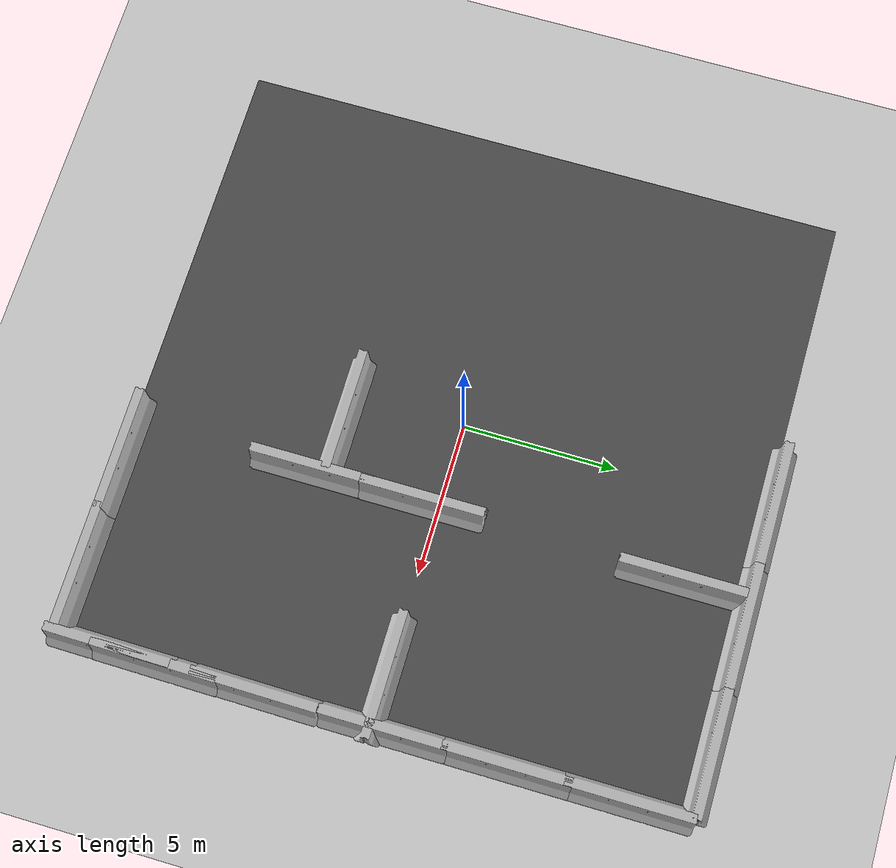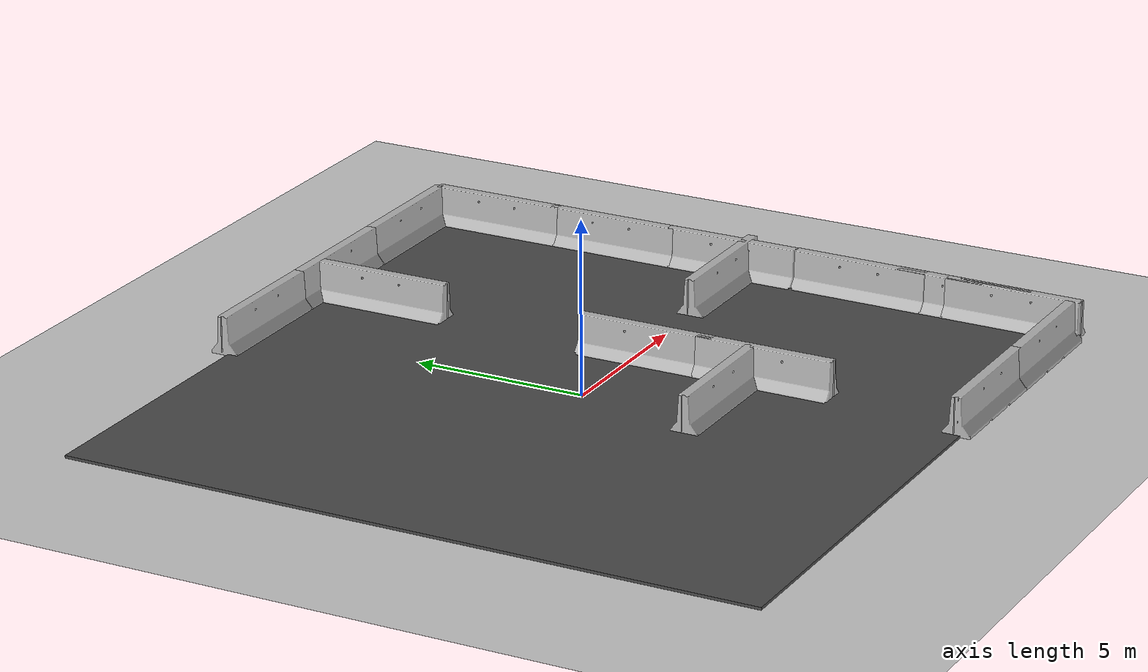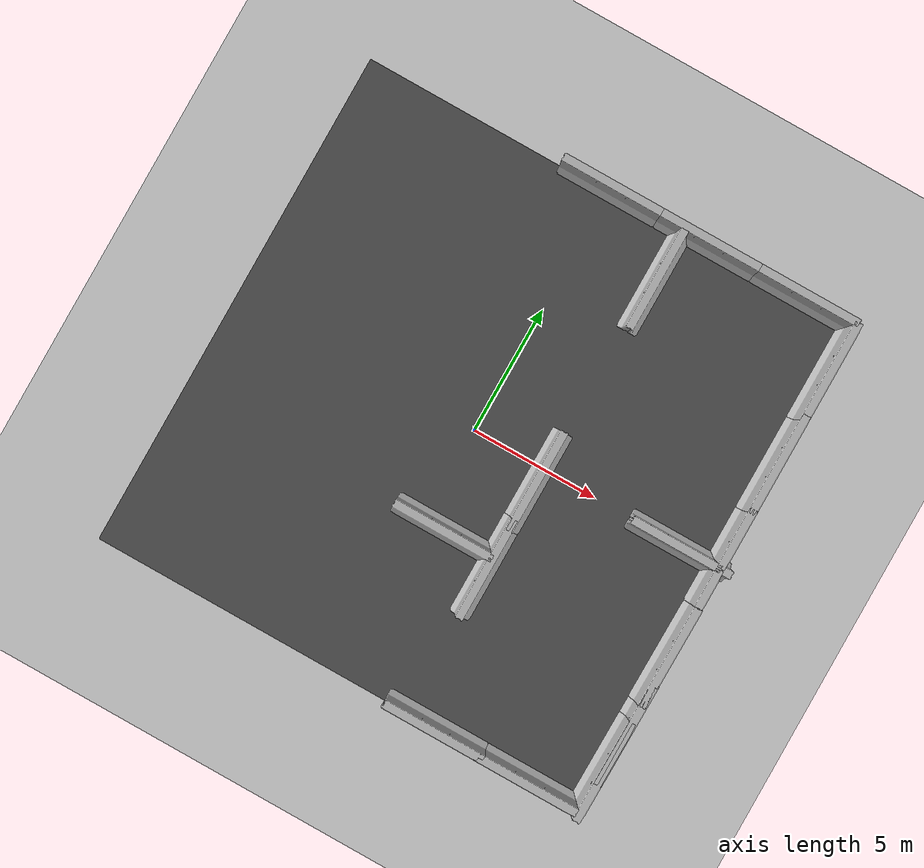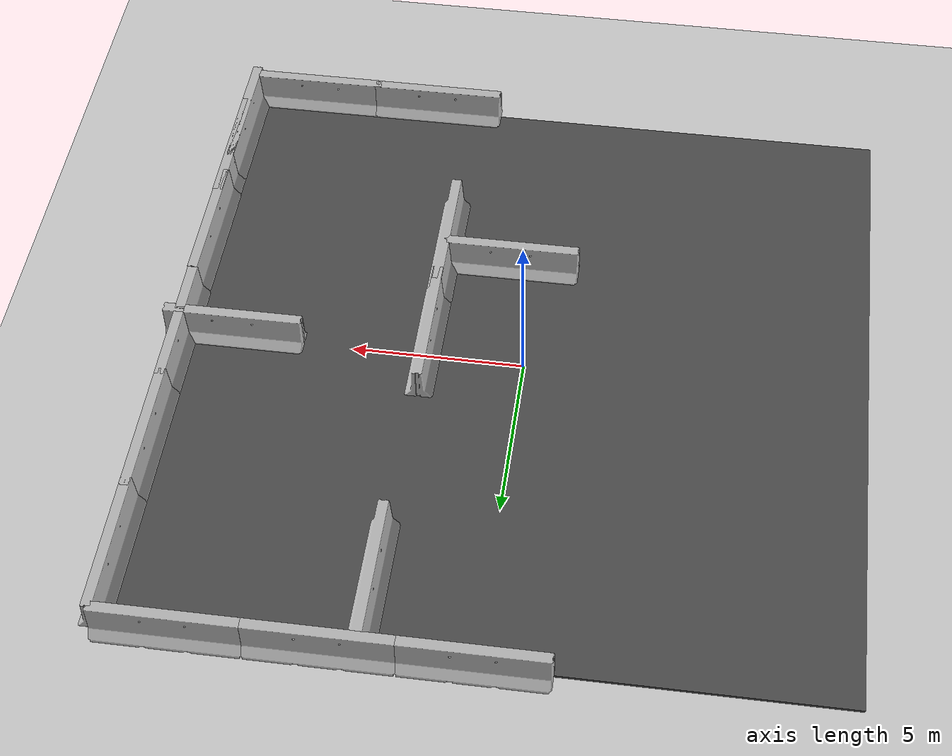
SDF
<sdf version="1.6">
 <world name="default">
  <model name="ground_plane">
   <static>1</static>
   <link name="link">
    <collision name="collision">
     <geometry><plane><normal>0 0 1</normal><size>100 100</size></plane></geometry>
     <surface><friction><ode><mu>100</mu><mu2>50</mu2></ode></friction></surface>
    </collision>
    <visual name="visual">
     <cast_shadows>0</cast_shadows>
     <geometry><plane><normal>0 0 1</normal><size>100 100</size></plane></geometry>
     <material>
      <script><uri>file://media/materials/scripts/gazebo.material</uri><name>Gazebo/Grey</name></script>
     </material>
    </visual>
    <velocity_decay><linear>0</linear><angular>0</angular></velocity_decay>
   </link>
  </model>
  <model name="jersey_barrier_2">
   <static>1</static>
   <link name="link">
    <visual name="visual">
     <geometry>
      <mesh><uri>model://jersey_barrier/meshes/jersey_barrier.dae</uri><scale>1 1 1</scale></mesh>
     </geometry>
    </visual>
    <collision name="upright">
     <pose>0 0 0.5715 0 -0 0</pose>
     <geometry><box><size>4.06542 0.3063 1.143</size></box></geometry>
    </collision>
    <collision name="base">
     <pose>0 0 0.032258 0 -0 0</pose>
     <geometry><box><size>4.06542 0.8107 0.064516</size></box></geometry>
    </collision>
    <collision name="base2">
     <pose>0 0 0.1 0 -0 0</pose>
     <geometry><box><size>4.06542 0.65 0.1</size></box></geometry>
    </collision>
    <collision name="base3">
     <pose>0 0 0.2 0 -0 0</pose>
     <geometry><box><size>4.06542 0.5 0.1</size></box></geometry>
    </collision>
    <collision name="left-angle">
     <pose>0 -0.224 0.2401 0.9 -0 0</pose>
     <geometry><box><size>4.06542 0.5 0.064516</size></box></geometry>
    </collision>
    <collision name="right-angle">
     <pose>0 0.224 0.2401 -0.9 0 0</pose>
     <geometry><box><size>4.06542 0.5 0.064516</size></box></geometry>
    </collision>
    <velocity_decay><linear>0</linear><angular>0</angular></velocity_decay>
   </link>
   <pose>4 -10 0 0 -0 0</pose>
  </model>
  <model name="jersey_barrier_5">
   <static>1</static>
   <link name="link">
    <visual name="visual">
     <geometry>
      <mesh><uri>model://jersey_barrier/meshes/jersey_barrier.dae</uri><scale>1 1 1</scale></mesh>
     </geometry>
    </visual>
    <collision name="upright">
     <pose>0 0 0.5715 0 -0 0</pose>
     <geometry><box><size>4.06542 0.3063 1.143</size></box></geometry>
    </collision>
    <collision name="base">
     <pose>0 0 0.032258 0 -0 0</pose>
     <geometry><box><size>4.06542 0.8107 0.064516</size></box></geometry>
    </collision>
    <collision name="base2">
     <pose>0 0 0.1 0 -0 0</pose>
     <geometry><box><size>4.06542 0.65 0.1</size></box></geometry>
    </collision>
    <collision name="base3">
     <pose>0 0 0.2 0 -0 0</pose>
     <geometry><box><size>4.06542 0.5 0.1</size></box></geometry>
    </collision>
    <collision name="left-angle">
     <pose>0 -0.224 0.2401 0.9 -0 0</pose>
     <geometry><box><size>4.06542 0.5 0.064516</size></box></geometry>
    </collision>
    <collision name="right-angle">
     <pose>0 0.224 0.2401 -0.9 0 0</pose>
     <geometry><box><size>4.06542 0.5 0.064516</size></box></geometry>
    </collision>
    <velocity_decay><linear>0</linear><angular>0</angular></velocity_decay>
   </link>
   <pose>0 10 0 0 -0 0</pose>
  </model>
  <model name="jersey_barrier_6">
   <static>1</static>
   <link name="link">
    <visual name="visual">
     <geometry>
      <mesh><uri>model://jersey_barrier/meshes/jersey_barrier.dae</uri><scale>1 1 1</scale></mesh>
     </geometry>
    </visual>
    <collision name="upright">
     <pose>0 0 0.5715 0 -0 0</pose>
     <geometry><box><size>4.06542 0.3063 1.143</size></box></geometry>
    </collision>
    <collision name="base">
     <pose>0 0 0.032258 0 -0 0</pose>
     <geometry><box><size>4.06542 0.8107 0.064516</size></box></geometry>
    </collision>
    <collision name="base2">
     <pose>0 0 0.1 0 -0 0</pose>
     <geometry><box><size>4.06542 0.65 0.1</size></box></geometry>
    </collision>
    <collision name="base3">
     <pose>0 0 0.2 0 -0 0</pose>
     <geometry><box><size>4.06542 0.5 0.1</size></box></geometry>
    </collision>
    <collision name="left-angle">
     <pose>0 -0.224 0.2401 0.9 -0 0</pose>
     <geometry><box><size>4.06542 0.5 0.064516</size></box></geometry>
    </collision>
    <collision name="right-angle">
     <pose>0 0.224 0.2401 -0.9 0 0</pose>
     <geometry><box><size>4.06542 0.5 0.064516</size></box></geometry>
    </collision>
    <velocity_decay><linear>0</linear><angular>0</angular></velocity_decay>
   </link>
   <pose>4 10 0 0 -0 0</pose>
  </model>
  <model name="jersey_barrier_7">
   <static>1</static>
   <link name="link">
    <visual name="visual">
     <geometry>
      <mesh><uri>model://jersey_barrier/meshes/jersey_barrier.dae</uri><scale>1 1 1</scale></mesh>
     </geometry>
    </visual>
    <collision name="upright">
     <pose>0 0 0.5715 0 -0 0</pose>
     <geometry><box><size>4.06542 0.3063 1.143</size></box></geometry>
    </collision>
    <collision name="base">
     <pose>0 0 0.032258 0 -0 0</pose>
     <geometry><box><size>4.06542 0.8107 0.064516</size></box></geometry>
    </collision>
    <collision name="base2">
     <pose>0 0 0.1 0 -0 0</pose>
     <geometry><box><size>4.06542 0.65 0.1</size></box></geometry>
    </collision>
    <collision name="base3">
     <pose>0 0 0.2 0 -0 0</pose>
     <geometry><box><size>4.06542 0.5 0.1</size></box></geometry>
    </collision>
    <collision name="left-angle">
     <pose>0 -0.224 0.2401 0.9 -0 0</pose>
     <geometry><box><size>4.06542 0.5 0.064516</size></box></geometry>
    </collision>
    <collision name="right-angle">
     <pose>0 0.224 0.2401 -0.9 0 0</pose>
     <geometry><box><size>4.06542 0.5 0.064516</size></box></geometry>
    </collision>
    <velocity_decay><linear>0</linear><angular>0</angular></velocity_decay>
   </link>
   <pose>10 0.42241 0 0 -0 1.57</pose>
  </model>
  <model name="jersey_barrier_8">
   <static>1</static>
   <link name="link">
    <visual name="visual">
     <geometry>
      <mesh><uri>model://jersey_barrier/meshes/jersey_barrier.dae</uri><scale>1 1 1</scale></mesh>
     </geometry>
    </visual>
    <collision name="upright">
     <pose>0 0 0.5715 0 -0 0</pose>
     <geometry><box><size>4.06542 0.3063 1.143</size></box></geometry>
    </collision>
    <collision name="base">
     <pose>0 0 0.032258 0 -0 0</pose>
     <geometry><box><size>4.06542 0.8107 0.064516</size></box></geometry>
    </collision>
    <collision name="base2">
     <pose>0 0 0.1 0 -0 0</pose>
     <geometry><box><size>4.06542 0.65 0.1</size></box></geometry>
    </collision>
    <collision name="base3">
     <pose>0 0 0.2 0 -0 0</pose>
     <geometry><box><size>4.06542 0.5 0.1</size></box></geometry>
    </collision>
    <collision name="left-angle">
     <pose>0 -0.224 0.2401 0.9 -0 0</pose>
     <geometry><box><size>4.06542 0.5 0.064516</size></box></geometry>
    </collision>
    <collision name="right-angle">
     <pose>0 0.224 0.2401 -0.9 0 0</pose>
     <geometry><box><size>4.06542 0.5 0.064516</size></box></geometry>
    </collision>
    <velocity_decay><linear>0</linear><angular>0</angular></velocity_decay>
   </link>
   <pose>10 4.24369 0 0 -0 1.57</pose>
  </model>
  <model name="jersey_barrier_12">
   <static>1</static>
   <link name="link">
    <visual name="visual">
     <geometry>
      <mesh><uri>model://jersey_barrier/meshes/jersey_barrier.dae</uri><scale>1 1 1</scale></mesh>
     </geometry>
    </visual>
    <collision name="upright">
     <pose>0 0 0.5715 0 -0 0</pose>
     <geometry><box><size>4.06542 0.3063 1.143</size></box></geometry>
    </collision>
    <collision name="base">
     <pose>0 0 0.032258 0 -0 0</pose>
     <geometry><box><size>4.06542 0.8107 0.064516</size></box></geometry>
    </collision>
    <collision name="base2">
     <pose>0 0 0.1 0 -0 0</pose>
     <geometry><box><size>4.06542 0.65 0.1</size></box></geometry>
    </collision>
    <collision name="base3">
     <pose>0 0 0.2 0 -0 0</pose>
     <geometry><box><size>4.06542 0.5 0.1</size></box></geometry>
    </collision>
    <collision name="left-angle">
     <pose>0 -0.224 0.2401 0.9 -0 0</pose>
     <geometry><box><size>4.06542 0.5 0.064516</size></box></geometry>
    </collision>
    <collision name="right-angle">
     <pose>0 0.224 0.2401 -0.9 0 0</pose>
     <geometry><box><size>4.06542 0.5 0.064516</size></box></geometry>
    </collision>
    <velocity_decay><linear>0</linear><angular>0</angular></velocity_decay>
   </link>
   <pose>10 -3.62159 0 0 -0 1.56</pose>
  </model>
  <model name="jersey_barrier_13">
   <static>1</static>
   <link name="link">
    <visual name="visual">
     <geometry>
      <mesh><uri>model://jersey_barrier/meshes/jersey_barrier.dae</uri><scale>1 1 1</scale></mesh>
     </geometry>
    </visual>
    <collision name="upright">
     <pose>0 0 0.5715 0 -0 0</pose>
     <geometry><box><size>4.06542 0.3063 1.143</size></box></geometry>
    </collision>
    <collision name="base">
     <pose>0 0 0.032258 0 -0 0</pose>
     <geometry><box><size>4.06542 0.8107 0.064516</size></box></geometry>
    </collision>
    <collision name="base2">
     <pose>0 0 0.1 0 -0 0</pose>
     <geometry><box><size>4.06542 0.65 0.1</size></box></geometry>
    </collision>
    <collision name="base3">
     <pose>0 0 0.2 0 -0 0</pose>
     <geometry><box><size>4.06542 0.5 0.1</size></box></geometry>
    </collision>
    <collision name="left-angle">
     <pose>0 -0.224 0.2401 0.9 -0 0</pose>
     <geometry><box><size>4.06542 0.5 0.064516</size></box></geometry>
    </collision>
    <collision name="right-angle">
     <pose>0 0.224 0.2401 -0.9 0 0</pose>
     <geometry><box><size>4.06542 0.5 0.064516</size></box></geometry>
    </collision>
    <velocity_decay><linear>0</linear><angular>0</angular></velocity_decay>
   </link>
   <pose>10 8 0 0 -0 1.57</pose>
  </model>
  <model name="jersey_barrier_15">
   <static>1</static>
   <link name="link">
    <visual name="visual">
     <geometry>
      <mesh><uri>model://jersey_barrier/meshes/jersey_barrier.dae</uri><scale>1 1 1</scale></mesh>
     </geometry>
    </visual>
    <collision name="upright">
     <pose>0 0 0.5715 0 -0 0</pose>
     <geometry><box><size>4.06542 0.3063 1.143</size></box></geometry>
    </collision>
    <collision name="base">
     <pose>0 0 0.032258 0 -0 0</pose>
     <geometry><box><size>4.06542 0.8107 0.064516</size></box></geometry>
    </collision>
    <collision name="base2">
     <pose>0 0 0.1 0 -0 0</pose>
     <geometry><box><size>4.06542 0.65 0.1</size></box></geometry>
    </collision>
    <collision name="base3">
     <pose>0 0 0.2 0 -0 0</pose>
     <geometry><box><size>4.06542 0.5 0.1</size></box></geometry>
    </collision>
    <collision name="left-angle">
     <pose>0 -0.224 0.2401 0.9 -0 0</pose>
     <geometry><box><size>4.06542 0.5 0.064516</size></box></geometry>
    </collision>
    <collision name="right-angle">
     <pose>0 0.224 0.2401 -0.9 0 0</pose>
     <geometry><box><size>4.06542 0.5 0.064516</size></box></geometry>
    </collision>
    <velocity_decay><linear>0</linear><angular>0</angular></velocity_decay>
   </link>
   <pose>8.45495 0 0 0 -0 0</pose>
  </model>
  <model name="asphalt_plane">
   <static>1</static>
   <link name="link">
    <collision name="collision"><geometry><box><size>20 20 0.1</size></box></geometry></collision>
    <visual name="visual">
     <cast_shadows>0</cast_shadows>
     <geometry><box><size>20 20 0.1</size></box></geometry>
     <material>
      <script>
       <uri>model://asphalt_plane/materials/scripts</uri>
       <uri>model://asphalt_plane/materials/textures</uri>
       <name>vrc/asphalt</name>
      </script>
     </material>
    </visual>
    <velocity_decay><linear>0</linear><angular>0</angular></velocity_decay>
   </link>
   <pose>0.076733 -0.110379 0 0 -0 0</pose>
  </model>
  <model name="jersey_barrier_15_clone">
   <static>1</static>
   <link name="link">
    <visual name="visual">
     <geometry>
      <mesh><uri>model://jersey_barrier/meshes/jersey_barrier.dae</uri><scale>1 1 1</scale></mesh>
     </geometry>
    </visual>
    <collision name="upright">
     <pose>0 0 0.5715 0 -0 0</pose>
     <geometry><box><size>4.06542 0.3063 1.143</size></box></geometry>
    </collision>
    <collision name="base">
     <pose>0 0 0.032258 0 -0 0</pose>
     <geometry><box><size>4.06542 0.8107 0.064516</size></box></geometry>
    </collision>
    <collision name="base2">
     <pose>0 0 0.1 0 -0 0</pose>
     <geometry><box><size>4.06542 0.65 0.1</size></box></geometry>
    </collision>
    <collision name="base3">
     <pose>0 0 0.2 0 -0 0</pose>
     <geometry><box><size>4.06542 0.5 0.1</size></box></geometry>
    </collision>
    <collision name="left-angle">
     <pose>0 -0.224 0.2401 0.9 -0 0</pose>
     <geometry><box><size>4.06542 0.5 0.064516</size></box></geometry>
    </collision>
    <collision name="right-angle">
     <pose>0 0.224 0.2401 -0.9 0 0</pose>
     <geometry><box><size>4.06542 0.5 0.064516</size></box></geometry>
    </collision>
    <velocity_decay><linear>0</linear><angular>0</angular></velocity_decay>
   </link>
   <pose>8 10 0 0 -0 0</pose>
  </model>
  <model name="jersey_barrier_2_clone">
   <static>1</static>
   <link name="link">
    <visual name="visual">
     <geometry>
      <mesh><uri>model://jersey_barrier/meshes/jersey_barrier.dae</uri><scale>1 1 1</scale></mesh>
     </geometry>
    </visual>
    <collision name="upright">
     <pose>0 0 0.5715 0 -0 0</pose>
     <geometry><box><size>4.06542 0.3063 1.143</size></box></geometry>
    </collision>
    <collision name="base">
     <pose>0 0 0.032258 0 -0 0</pose>
     <geometry><box><size>4.06542 0.8107 0.064516</size></box></geometry>
    </collision>
    <collision name="base2">
     <pose>0 0 0.1 0 -0 0</pose>
     <geometry><box><size>4.06542 0.65 0.1</size></box></geometry>
    </collision>
    <collision name="base3">
     <pose>0 0 0.2 0 -0 0</pose>
     <geometry><box><size>4.06542 0.5 0.1</size></box></geometry>
    </collision>
    <collision name="left-angle">
     <pose>0 -0.224 0.2401 0.9 -0 0</pose>
     <geometry><box><size>4.06542 0.5 0.064516</size></box></geometry>
    </collision>
    <collision name="right-angle">
     <pose>0 0.224 0.2401 -0.9 0 0</pose>
     <geometry><box><size>4.06542 0.5 0.064516</size></box></geometry>
    </collision>
    <velocity_decay><linear>0</linear><angular>0</angular></velocity_decay>
   </link>
   <pose>7.82141 -10.0058 0 0 -0 0</pose>
  </model>
  <model name="jersey_barrier_12_clone">
   <static>1</static>
   <link name="link">
    <visual name="visual">
     <geometry>
      <mesh><uri>model://jersey_barrier/meshes/jersey_barrier.dae</uri><scale>1 1 1</scale></mesh>
     </geometry>
    </visual>
    <collision name="upright">
     <pose>0 0 0.5715 0 -0 0</pose>
     <geometry><box><size>4.06542 0.3063 1.143</size></box></geometry>
    </collision>
    <collision name="base">
     <pose>0 0 0.032258 0 -0 0</pose>
     <geometry><box><size>4.06542 0.8107 0.064516</size></box></geometry>
    </collision>
    <collision name="base2">
     <pose>0 0 0.1 0 -0 0</pose>
     <geometry><box><size>4.06542 0.65 0.1</size></box></geometry>
    </collision>
    <collision name="base3">
     <pose>0 0 0.2 0 -0 0</pose>
     <geometry><box><size>4.06542 0.5 0.1</size></box></geometry>
    </collision>
    <collision name="left-angle">
     <pose>0 -0.224 0.2401 0.9 -0 0</pose>
     <geometry><box><size>4.06542 0.5 0.064516</size></box></geometry>
    </collision>
    <collision name="right-angle">
     <pose>0 0.224 0.2401 -0.9 0 0</pose>
     <geometry><box><size>4.06542 0.5 0.064516</size></box></geometry>
    </collision>
    <velocity_decay><linear>0</linear><angular>0</angular></velocity_decay>
   </link>
   <pose>9.98058 -6.78718 0 0 -0 1.56</pose>
  </model>
  <model name="jersey_barrier_12_clone_0">
   <static>1</static>
   <link name="link">
    <visual name="visual">
     <geometry>
      <mesh><uri>model://jersey_barrier/meshes/jersey_barrier.dae</uri><scale>1 1 1</scale></mesh>
     </geometry>
    </visual>
    <collision name="upright">
     <pose>0 0 0.5715 0 -0 0</pose>
     <geometry><box><size>4.06542 0.3063 1.143</size></box></geometry>
    </collision>
    <collision name="base">
     <pose>0 0 0.032258 0 -0 0</pose>
     <geometry><box><size>4.06542 0.8107 0.064516</size></box></geometry>
    </collision>
    <collision name="base2">
     <pose>0 0 0.1 0 -0 0</pose>
     <geometry><box><size>4.06542 0.65 0.1</size></box></geometry>
    </collision>
    <collision name="base3">
     <pose>0 0 0.2 0 -0 0</pose>
     <geometry><box><size>4.06542 0.5 0.1</size></box></geometry>
    </collision>
    <collision name="left-angle">
     <pose>0 -0.224 0.2401 0.9 -0 0</pose>
     <geometry><box><size>4.06542 0.5 0.064516</size></box></geometry>
    </collision>
    <collision name="right-angle">
     <pose>0 0.224 0.2401 -0.9 0 0</pose>
     <geometry><box><size>4.06542 0.5 0.064516</size></box></geometry>
    </collision>
    <velocity_decay><linear>0</linear><angular>0</angular></velocity_decay>
   </link>
   <pose>9.95925 -8.26956 0 0 -0 1.56</pose>
  </model>
  <model name="jersey_barrier_8_clone">
   <static>1</static>
   <link name="link">
    <visual name="visual">
     <geometry>
      <mesh><uri>model://jersey_barrier/meshes/jersey_barrier.dae</uri><scale>1 1 1</scale></mesh>
     </geometry>
    </visual>
    <collision name="upright">
     <pose>0 0 0.5715 0 -0 0</pose>
     <geometry><box><size>4.06542 0.3063 1.143</size></box></geometry>
    </collision>
    <collision name="base">
     <pose>0 0 0.032258 0 -0 0</pose>
     <geometry><box><size>4.06542 0.8107 0.064516</size></box></geometry>
    </collision>
    <collision name="base2">
     <pose>0 0 0.1 0 -0 0</pose>
     <geometry><box><size>4.06542 0.65 0.1</size></box></geometry>
    </collision>
    <collision name="base3">
     <pose>0 0 0.2 0 -0 0</pose>
     <geometry><box><size>4.06542 0.5 0.1</size></box></geometry>
    </collision>
    <collision name="left-angle">
     <pose>0 -0.224 0.2401 0.9 -0 0</pose>
     <geometry><box><size>4.06542 0.5 0.064516</size></box></geometry>
    </collision>
    <collision name="right-angle">
     <pose>0 0.224 0.2401 -0.9 0 0</pose>
     <geometry><box><size>4.06542 0.5 0.064516</size></box></geometry>
    </collision>
    <velocity_decay><linear>0</linear><angular>0</angular></velocity_decay>
   </link>
   <pose>3.01017 7.8586 0 0 -0 1.57</pose>
  </model>
  <model name="jersey_barrier_8_clone_0">
   <static>1</static>
   <link name="link">
    <visual name="visual">
     <geometry>
      <mesh><uri>model://jersey_barrier/meshes/jersey_barrier.dae</uri><scale>1 1 1</scale></mesh>
     </geometry>
    </visual>
    <collision name="upright">
     <pose>0 0 0.5715 0 -0 0</pose>
     <geometry><box><size>4.06542 0.3063 1.143</size></box></geometry>
    </collision>
    <collision name="base">
     <pose>0 0 0.032258 0 -0 0</pose>
     <geometry><box><size>4.06542 0.8107 0.064516</size></box></geometry>
    </collision>
    <collision name="base2">
     <pose>0 0 0.1 0 -0 0</pose>
     <geometry><box><size>4.06542 0.65 0.1</size></box></geometry>
    </collision>
    <collision name="base3">
     <pose>0 0 0.2 0 -0 0</pose>
     <geometry><box><size>4.06542 0.5 0.1</size></box></geometry>
    </collision>
    <collision name="left-angle">
     <pose>0 -0.224 0.2401 0.9 -0 0</pose>
     <geometry><box><size>4.06542 0.5 0.064516</size></box></geometry>
    </collision>
    <collision name="right-angle">
     <pose>0 0.224 0.2401 -0.9 0 0</pose>
     <geometry><box><size>4.06542 0.5 0.064516</size></box></geometry>
    </collision>
    <velocity_decay><linear>0</linear><angular>0</angular></velocity_decay>
   </link>
   <pose>2.82289 -0.506126 0 0 -0 1.57</pose>
  </model>
  <model name="jersey_barrier_8_clone_1">
   <static>1</static>
   <link name="link">
    <visual name="visual">
     <geometry>
      <mesh><uri>model://jersey_barrier/meshes/jersey_barrier.dae</uri><scale>1 1 1</scale></mesh>
     </geometry>
    </visual>
    <collision name="upright">
     <pose>0 0 0.5715 0 -0 0</pose>
     <geometry><box><size>4.06542 0.3063 1.143</size></box></geometry>
    </collision>
    <collision name="base">
     <pose>0 0 0.032258 0 -0 0</pose>
     <geometry><box><size>4.06542 0.8107 0.064516</size></box></geometry>
    </collision>
    <collision name="base2">
     <pose>0 0 0.1 0 -0 0</pose>
     <geometry><box><size>4.06542 0.65 0.1</size></box></geometry>
    </collision>
    <collision name="base3">
     <pose>0 0 0.2 0 -0 0</pose>
     <geometry><box><size>4.06542 0.5 0.1</size></box></geometry>
    </collision>
    <collision name="left-angle">
     <pose>0 -0.224 0.2401 0.9 -0 0</pose>
     <geometry><box><size>4.06542 0.5 0.064516</size></box></geometry>
    </collision>
    <collision name="right-angle">
     <pose>0 0.224 0.2401 -0.9 0 0</pose>
     <geometry><box><size>4.06542 0.5 0.064516</size></box></geometry>
    </collision>
    <velocity_decay><linear>0</linear><angular>0</angular></velocity_decay>
   </link>
   <pose>2.80667 -4.06958 0 0 -0 1.57</pose>
  </model>
  <model name="jersey_barrier_15_clone_1">
   <static>1</static>
   <link name="link">
    <visual name="visual">
     <geometry>
      <mesh><uri>model://jersey_barrier/meshes/jersey_barrier.dae</uri><scale>1 1 1</scale></mesh>
     </geometry>
    </visual>
    <collision name="upright">
     <pose>0 0 0.5715 0 -0 0</pose>
     <geometry><box><size>4.06542 0.3063 1.143</size></box></geometry>
    </collision>
    <collision name="base">
     <pose>0 0 0.032258 0 -0 0</pose>
     <geometry><box><size>4.06542 0.8107 0.064516</size></box></geometry>
    </collision>
    <collision name="base2">
     <pose>0 0 0.1 0 -0 0</pose>
     <geometry><box><size>4.06542 0.65 0.1</size></box></geometry>
    </collision>
    <collision name="base3">
     <pose>0 0 0.2 0 -0 0</pose>
     <geometry><box><size>4.06542 0.5 0.1</size></box></geometry>
    </collision>
    <collision name="left-angle">
     <pose>0 -0.224 0.2401 0.9 -0 0</pose>
     <geometry><box><size>4.06542 0.5 0.064516</size></box></geometry>
    </collision>
    <collision name="right-angle">
     <pose>0 0.224 0.2401 -0.9 0 0</pose>
     <geometry><box><size>4.06542 0.5 0.064516</size></box></geometry>
    </collision>
    <velocity_decay><linear>0</linear><angular>0</angular></velocity_decay>
   </link>
   <pose>0.811488 -3.64308 0 0 -0 0</pose>
  </model>
 </world>
</sdf>
